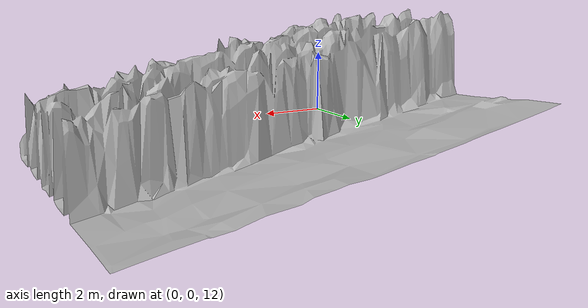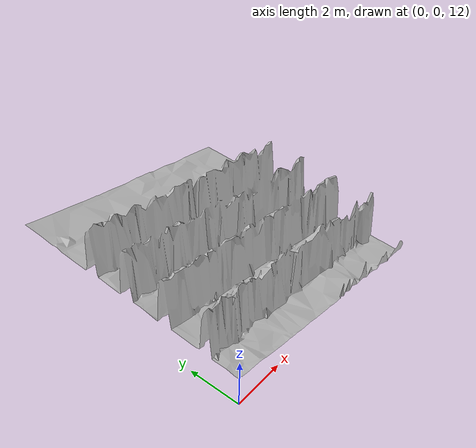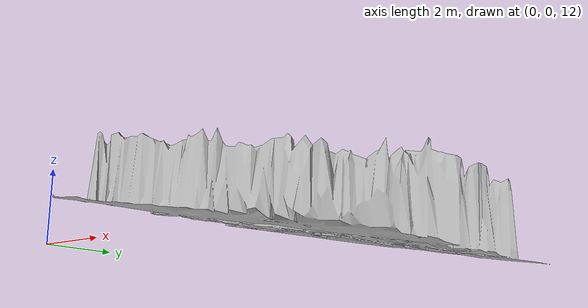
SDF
<?xml version="1.0" ?>
<sdf version="1.10">
    <model name="map_260_50">
        <link name="map_260_50_link">
            <visual name="map_260_50_visual">
                <geometry>
                    <mesh>
                        <uri>meshes/visual/map_260_50.obj</uri>
                    </mesh>
                </geometry>
            </visual>
            <collision name="map_260_50_collision">
                <surface>
                    <friction>
                        <ode>
                            <mu>2.316343837943928</mu>
                            <mu2>2.316343837943928</mu2>
                        </ode>
                        <bullet>
                            <friction>2.316343837943928</friction>
                            <friction2>2.316343837943928</friction2>
                        </bullet>
                    </friction>
                </surface>
                <geometry>
                    <mesh>
                        <uri>meshes/visual/map_260_50.obj</uri>
                    </mesh>
                </geometry>
            </collision>
        </link>
        <static>True</static>
    </model>
</sdf>
